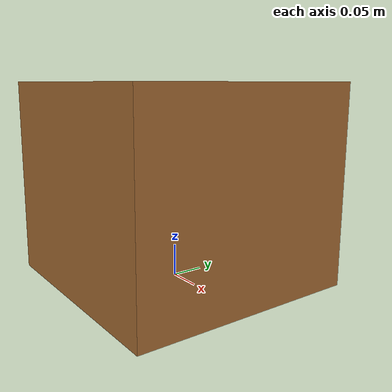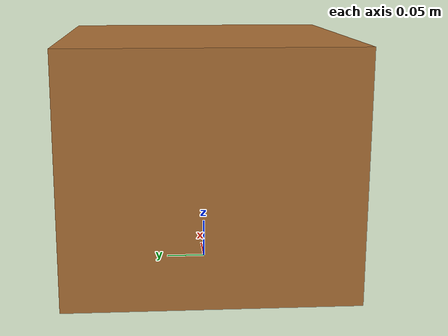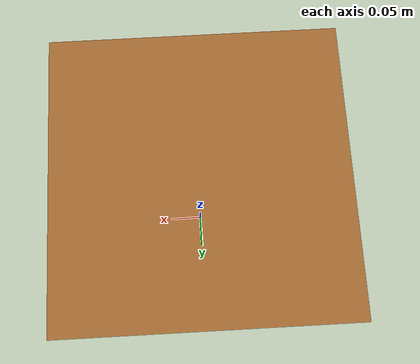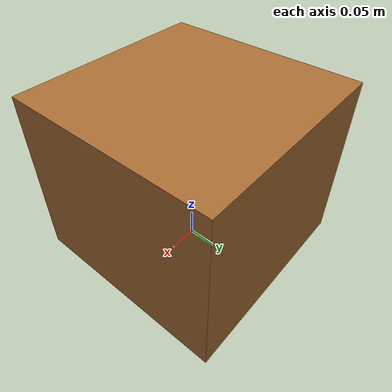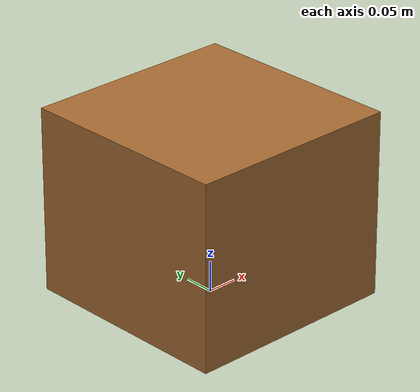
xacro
<?xml version="1.0"?>
<robot xmlns:xacro="http://www.ros.org/wiki/xacro" name="cargo_crate">
  <xacro:include filename="cargo_crate_macro.xacro"/>
  <xacro:arg name="cargo_mass" default="1.0"/>
  <!-- Standalone preview: the crate bottom rests at z=0. -->
  <link name="crate_base_link"/>
  <xacro:cargo_crate parent="crate_base_link" mass="$(arg cargo_mass)"/>
</robot>

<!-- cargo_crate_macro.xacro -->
<robot xmlns:xacro="http://www.ros.org/wiki/xacro" name="cargo_crate">
  <xacro:macro name="cargo_crate"
               params="parent xyz:='0 0 0' name:=cargo_crate mass:=1.0 crate_length:=0.3556 crate_width:=0.3556 crate_height:=0.3048">
    <link name="${name}_link">
      <visual>
        <origin xyz="0 0 ${crate_height / 2}"/>
        <geometry>
          <box size="${crate_length} ${crate_width} ${crate_height}"/>
        </geometry>
        <material name="${name}_brown">
          <color rgba="0.65 0.42 0.20 1"/>
        </material>
      </visual>
      <collision>
        <origin xyz="0 0 ${crate_height / 2}"/>
        <geometry>
          <box size="${crate_length} ${crate_width} ${crate_height}"/>
        </geometry>
      </collision>
      <inertial>
        <origin xyz="0 0 ${crate_height / 2}"/>
        <mass value="${mass}"/>
        <inertia ixx="${mass * (crate_width**2 + crate_height**2) / 12}"
                 ixy="0" ixz="0"
                 iyy="${mass * (crate_length**2 + crate_height**2) / 12}"
                 iyz="0"
                 izz="${mass * (crate_length**2 + crate_width**2) / 12}"/>
      </inertial>
    </link>
    <joint name="${name}_joint" type="fixed">
      <parent link="${parent}"/>
      <child link="${name}_link"/>
      <origin xyz="${xyz}"/>
    </joint>
  </xacro:macro>
</robot>
